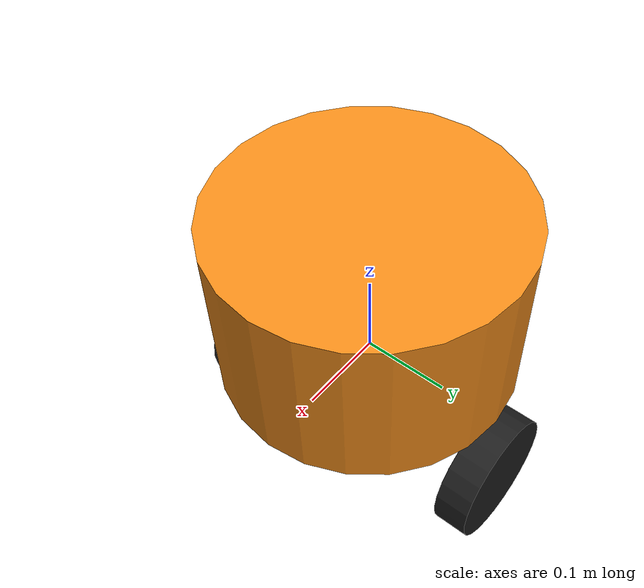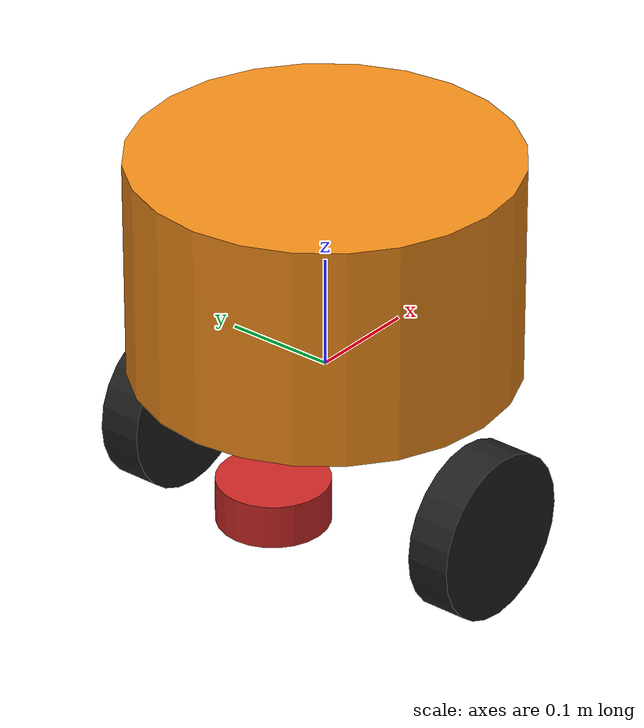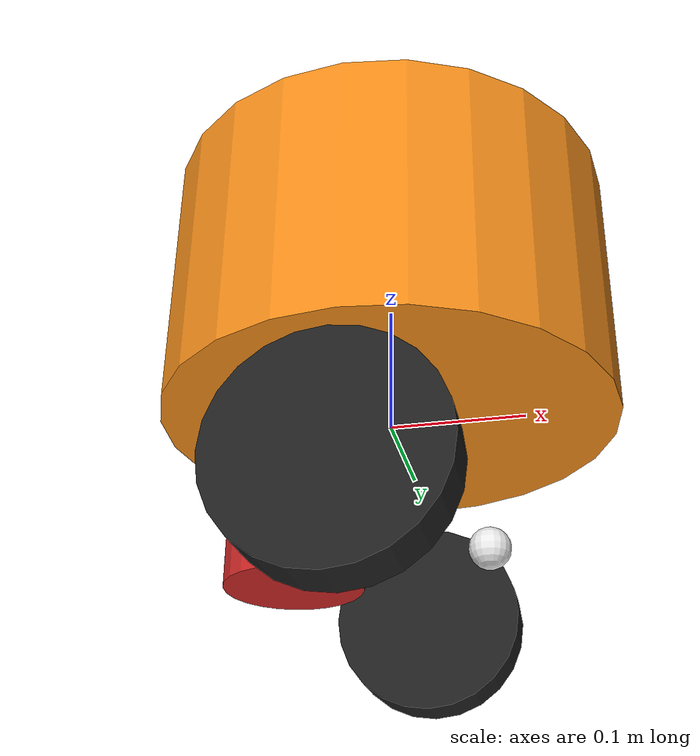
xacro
<?xml version="1.0"?>
<!-- Basic differential drive mobile base -->
<robot xmlns:xacro="http://www.ros.org/wiki/xacro" name="diffdrive_robot">
  <xacro:arg name="prefix" default="" />
  <xacro:arg name="use_mock_hardware" default="false" />

  <xacro:include filename="$(find diffdrive_stm)/urdf/diffbot_description.urdf.xacro" />

  <!-- Import Rviz colors -->
  <xacro:include filename="$(find diffdrive_stm)/urdf/diffbot.materials.xacro" />

  <!-- Import diffbot ros2_control description -->
  <xacro:include filename="$(find diffdrive_stm)/ros2_control/diffbot.ros2_control.xacro" />

  <xacro:diffbot prefix="$(arg prefix)" />

  <xacro:diffbot_ros2_control
  name="DiffBot"
  prefix="$(arg prefix)"
  use_mock_hardware="$(arg use_mock_hardware)"/>

</robot>

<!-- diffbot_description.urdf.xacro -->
<robot xmlns:xacro="http://www.ros.org/wiki/xacro">

  <xacro:macro name="diffbot" params="prefix">

  <!-- Constants for robot dimensions -->
  <xacro:property name="PI" value="3.1415926535897931"/>
  <xacro:property name="base_mass" value="1" /> <!-- arbitrary value for base mass -->
  <xacro:property name="base_radius" value="0.17" />
  <xacro:property name="base_height" value="0.2" />

  <xacro:property name="wheel_mass" value="0.3" /> <!-- arbitrary value for wheel mass -->
  <xacro:property name="wheel_len" value="0.040" />
  <xacro:property name="wheel_radius" value="0.075" />
  <xacro:property name="caster_wheel_mass" value="0.1" /> <!-- arbitrary value for caster wheel mass -->
  <xacro:property name="caster_wheel_radius" value="0.015" />
  <xacro:property name="z_offset" value="-${base_height/2}" /> <!-- Space btw top of beam and the each joint -->

  <!-- Base Link -->
  <link name="${prefix}base_link">
    <collision>
      <origin xyz="0 0 0" rpy="0 0 0"/>
      <geometry>
        <cylinder length="${base_height}" radius="${base_radius}"/>
      </geometry>
    </collision>

    <visual>
      <origin xyz="0 0 ${base_height/2}" rpy="0 0 0"/>
      <geometry>
        <cylinder length="${base_height}" radius="${base_radius}"/>
      </geometry>
      <material name="orange"/>
    </visual>

    <inertial>
      <origin xyz="0 0 0" rpy="0 0 0"/>
      <mass value="${base_mass}"/>
      <inertia
        ixx="${base_mass / 12.0 * (3*base_radius*base_radius + base_height*base_height)}" ixy="0.0" ixz="0.0"
        iyy="${base_mass / 12.0 * (3*base_radius*base_radius + base_height*base_height)}" iyz="0.0"
        izz="${base_mass / 2.0 * base_radius*base_radius}"/>
      </inertial>
    </link>

    <joint name="${prefix}left_wheel_joint" type="continuous">
      <parent link="${prefix}base_link"/>
      <child link="${prefix}left_wheel"/>
      <origin xyz="0 -${base_radius} ${z_offset}" rpy="0 0 0"/>
      <axis xyz="0 1 0"/>
      <dynamics damping="0.2"/>
      <limit effort="100" velocity="1.0"/>
    </joint>

    <!-- left wheel Link -->
    <link name="${prefix}left_wheel">
      <collision>
        <origin xyz="0 0 0" rpy="${PI/2} 0 0"/>
        <geometry>
          <cylinder length="${wheel_len}" radius="${wheel_radius}"/>
        </geometry>
      </collision>

      <visual>
        <origin xyz="0 0 0" rpy="${PI/2} 0 0"/>
        <geometry>
          <cylinder length="${wheel_len}" radius="${wheel_radius}"/>
        </geometry>
        <material name="black"/>
      </visual>

      <inertial>
        <origin xyz="0 0 0" rpy="${PI/2} 0 0"/>
        <mass value="${wheel_mass}"/>
        <inertia
          ixx="${wheel_mass / 12.0 * (3*wheel_radius*wheel_radius + wheel_len*wheel_len)}" ixy="0.0" ixz="0.0"
          iyy="${wheel_mass / 12.0 * (3*wheel_radius*wheel_radius + wheel_len*wheel_len)}" iyz="0.0"
          izz="${wheel_mass / 2.0 * wheel_radius*wheel_radius}"/>
        </inertial>
      </link>

    <joint name="${prefix}right_wheel_joint" type="continuous">
      <parent link="${prefix}base_link"/>
      <child link="${prefix}right_wheel"/>
      <origin xyz="0 ${base_radius} ${z_offset}" rpy="0 0 0"/>
      <axis xyz="0 1 0"/>
      <dynamics damping="0.2"/>
      <limit effort="100" velocity="1.0"/>
    </joint>

    <!-- right wheel Link -->
    <link name="${prefix}right_wheel">
      <collision>
        <origin xyz="0 0 0" rpy="${PI/2} 0 0"/>
        <geometry>
          <cylinder length="${wheel_len}" radius="${wheel_radius}"/>
        </geometry>
      </collision>

      <visual>
        <origin xyz="0 0 0" rpy="${PI/2} 0 0"/>
        <geometry>
          <cylinder length="${wheel_len}" radius="${wheel_radius}"/>
        </geometry>
        <material name="black"/>
      </visual>

      <inertial>
        <origin xyz="0 0 0" rpy="${PI/2} 0 0"/>
        <mass value="${wheel_mass}"/>
        <inertia
          ixx="${wheel_mass / 12.0 * (3*wheel_radius*wheel_radius + wheel_len*wheel_len)}" ixy="0.0" ixz="0.0"
          iyy="${wheel_mass / 12.0 * (3*wheel_radius*wheel_radius + wheel_len*wheel_len)}" iyz="0.0"
          izz="${wheel_mass / 2.0 * wheel_radius*wheel_radius}"/>
        </inertial>
      </link>

    <joint name="${prefix}caster_frontal_wheel_joint" type="fixed">
      <parent link="${prefix}base_link"/>
      <child link="${prefix}caster_frontal_wheel"/>
      <origin xyz="${base_radius/2 - caster_wheel_radius} 0 ${z_offset}" rpy="0 0 0"/>
    </joint>

    <!-- caster frontal wheel Link -->
    <link name="${prefix}caster_frontal_wheel">
      <collision>
        <origin xyz="0 0 0" rpy="0 0 0"/>
        <geometry>
          <sphere radius="${caster_wheel_radius}"/>
        </geometry>
      </collision>

      <visual>
        <origin xyz="0 0 0" rpy="0 0 0"/>
        <geometry>
          <sphere radius="${caster_wheel_radius}"/>
        </geometry>
        <material name="white"/>
      </visual>

      <inertial>
        <origin xyz="0 0 0" rpy="0 0 0"/>
        <mass value="${caster_wheel_mass}"/>
        <inertia
          ixx="${caster_wheel_mass * 0.4 * (caster_wheel_radius * caster_wheel_radius)}" ixy="0.0" ixz="0.0"
          iyy="${caster_wheel_mass * 0.4 * (caster_wheel_radius * caster_wheel_radius)}" iyz="0.0"
          izz="${caster_wheel_mass * 0.4 * (caster_wheel_radius * caster_wheel_radius)}"/>
        </inertial>
      </link>

    <joint name="${prefix}caster_rear_wheel_joint" type="fixed">
      <parent link="${prefix}base_link"/>
      <child link="${prefix}caster_rear_wheel"/>
      <origin xyz="${-base_radius/2 + caster_wheel_radius} 0 ${z_offset}" rpy="0 0 0"/>
    </joint>

    <!-- caster rear wheel Link -->
    <link name="${prefix}caster_rear_wheel">
      <collision>
        <origin xyz="0 0 0" rpy="0 0 0"/>
        <geometry>
          <sphere radius="${caster_wheel_radius}"/>
        </geometry>
      </collision>

      <visual>
        <origin xyz="0 0 0" rpy="0 0 0"/>
        <geometry>
          <sphere radius="${caster_wheel_radius}"/>
        </geometry>
        <material name="white"/>
      </visual>

      <inertial>
        <origin xyz="0 0 0" rpy="0 0 0"/>
        <mass value="${caster_wheel_mass}"/>
        <inertia
          ixx="${caster_wheel_mass * 0.4 * (caster_wheel_radius * caster_wheel_radius)}" ixy="0.0" ixz="0.0"
          iyy="${caster_wheel_mass * 0.4 * (caster_wheel_radius * caster_wheel_radius)}" iyz="0.0"
          izz="${caster_wheel_mass * 0.4 * (caster_wheel_radius * caster_wheel_radius)}"/>
        </inertial>
    </link>

    <joint name="diff_imu_joint" type="fixed">
      <parent link="${prefix}base_link"/>
      <child link="${prefix}diff_imu"/>
      <origin xyz="${-base_radius/2 + caster_wheel_radius} 0 ${z_offset}" rpy="0 0 0"/>
    </joint>

    <link name="${prefix}diff_imu">
      <collision>
        <origin xyz="0 0 0" rpy="0 0 0"/>
        <geometry>
          <sphere radius="${caster_wheel_radius}"/>
        </geometry>
      </collision>

      <visual>
        <origin xyz="0 0 0" rpy="0 0 0"/>
        <geometry>
          <sphere radius="${caster_wheel_radius}"/>
        </geometry>
        <material name="white"/>
      </visual>

      <inertial>
        <origin xyz="0 0 0" rpy="0 0 0"/>
        <mass value="${caster_wheel_mass}"/>
        <inertia
          ixx="${caster_wheel_mass * 0.4 * (caster_wheel_radius * caster_wheel_radius)}" ixy="0.0" ixz="0.0"
          iyy="${caster_wheel_mass * 0.4 * (caster_wheel_radius * caster_wheel_radius)}" iyz="0.0"
          izz="${caster_wheel_mass * 0.4 * (caster_wheel_radius * caster_wheel_radius)}"/>
        </inertial>
    </link>

    <joint name="lidar_joint" type="fixed">
      <parent link="${prefix}base_link"/>
      <child link="${prefix}laser_link"/>
      <origin xyz="${-base_radius/2 + caster_wheel_radius} 0 ${z_offset}" rpy="0 0 0"/>
    </joint>
    <link name="laser_link">
      <visual>
          <geometry>
              <cylinder radius="0.05" length="0.04"/>
          </geometry>
          <material name="red"/>
      </visual>
      <collision>
          <geometry>
              <cylinder radius="0.05" length="0.04"/>
          </geometry>
      </collision>

    </link>

  </xacro:macro>

</robot>
